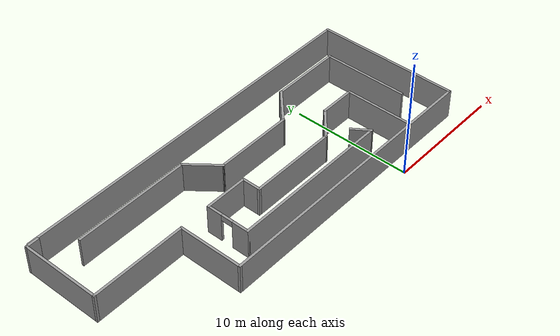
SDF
<?xml version='1.0'?>
<sdf version='1.4'>
  <model name='corridor_small'>
    <link name='Wall_10'>
      <collision name='Wall_10_Collision'>
        <geometry>
          <box>
            <size>1.12387 0.2 2.5</size>
          </box>
        </geometry>
        <pose>0 0 1.25 0 -0 0</pose>
      </collision>
      <visual name='Wall_10_Visual'>
        <pose>0 0 1.25 0 -0 0</pose>
        <geometry>
          <box>
            <size>1.12387 0.2 2.5</size>
          </box>
        </geometry>
        <material>
          <script>
            <uri>file://media/materials/scripts/gazebo.material</uri>
            <name>Gazebo/Grey</name>
          </script>
        </material>
      </visual>
      <velocity_decay>
        <linear>0</linear>
        <angular>0</angular>
      </velocity_decay>
      <pose>-23.7065 13.1084 0 0 -0 0</pose>
    </link>
    <link name='Wall_12'>
      <collision name='Wall_12_Collision'>
        <geometry>
          <box>
            <size>9.79835 0.2 2.5</size>
          </box>
        </geometry>
        <pose>0 0 1.25 0 -0 0</pose>
      </collision>
      <visual name='Wall_12_Visual'>
        <pose>0 0 1.25 0 -0 0</pose>
        <geometry>
          <box>
            <size>9.79835 0.2 2.5</size>
          </box>
        </geometry>
        <material>
          <script>
            <uri>file://media/materials/scripts/gazebo.material</uri>
            <name>Gazebo/Grey</name>
          </script>
        </material>
      </visual>
      <velocity_decay>
        <linear>0</linear>
        <angular>0</angular>
      </velocity_decay>
      <pose>-16.6254 10.9446 0 0 -0 0</pose>
    </link>
    <link name='Wall_13'>
      <collision name='Wall_13_Collision'>
        <geometry>
          <box>
            <size>3.13082 0.2 2.5</size>
          </box>
        </geometry>
        <pose>0 0 1.25 0 -0 0</pose>
      </collision>
      <visual name='Wall_13_Visual'>
        <pose>0 0 1.25 0 -0 0</pose>
        <geometry>
          <box>
            <size>3.13082 0.2 2.5</size>
          </box>
        </geometry>
        <material>
          <script>
            <uri>file://media/materials/scripts/gazebo.material</uri>
            <name>Gazebo/Grey</name>
          </script>
        </material>
      </visual>
      <velocity_decay>
        <linear>0</linear>
        <angular>0</angular>
      </velocity_decay>
      <pose>-10.9033 9.80634 0 0 0 -0.889498</pose>
    </link>
    <link name='Wall_14'>
      <collision name='Wall_14_Collision'>
        <geometry>
          <box>
            <size>6.66043 0.2 2.5</size>
          </box>
        </geometry>
        <pose>0 0 1.25 0 -0 0</pose>
      </collision>
      <visual name='Wall_14_Visual'>
        <pose>0 0 1.25 0 -0 0</pose>
        <geometry>
          <box>
            <size>6.66043 0.2 2.5</size>
          </box>
        </geometry>
        <material>
          <script>
            <uri>file://media/materials/scripts/gazebo.material</uri>
            <name>Gazebo/Grey</name>
          </script>
        </material>
      </visual>
      <velocity_decay>
        <linear>0</linear>
        <angular>0</angular>
      </velocity_decay>
      <pose>-6.75013 8.66808 0 0 -0 0</pose>
    </link>
    <link name='Wall_15'>
      <collision name='Wall_15_Collision'>
        <geometry>
          <box>
            <size>3.42068 0.2 2.5</size>
          </box>
        </geometry>
        <pose>0 0 1.25 0 -0 0</pose>
      </collision>
      <visual name='Wall_15_Visual'>
        <pose>0 0 1.25 0 -0 0</pose>
        <geometry>
          <box>
            <size>3.42068 0.2 2.5</size>
          </box>
        </geometry>
        <material>
          <script>
            <uri>file://media/materials/scripts/gazebo.material</uri>
            <name>Gazebo/Grey</name>
          </script>
        </material>
      </visual>
      <velocity_decay>
        <linear>0</linear>
        <angular>0</angular>
      </velocity_decay>
      <pose>-2.35089 9.77558 0 0 -0 0.758378</pose>
    </link>
    <link name='Wall_16'>
      <collision name='Wall_16_Collision'>
        <geometry>
          <box>
            <size>5.98362 0.2 2.5</size>
          </box>
        </geometry>
        <pose>0 0 1.25 0 -0 0</pose>
      </collision>
      <visual name='Wall_16_Visual'>
        <pose>0 0 1.25 0 -0 0</pose>
        <geometry>
          <box>
            <size>5.98362 0.2 2.5</size>
          </box>
        </geometry>
        <material>
          <script>
            <uri>file://media/materials/scripts/gazebo.material</uri>
            <name>Gazebo/Grey</name>
          </script>
        </material>
      </visual>
      <velocity_decay>
        <linear>0</linear>
        <angular>0</angular>
      </velocity_decay>
      <pose>1.70995 10.8831 0 0 -0 0</pose>
    </link>
    <link name='Wall_17'>
      <collision name='Wall_17_Collision'>
        <geometry>
          <box>
            <size>7.15265 0.2 2.5</size>
          </box>
        </geometry>
        <pose>0 0 1.25 0 -0 0</pose>
      </collision>
      <visual name='Wall_17_Visual'>
        <pose>0 0 1.25 0 -0 0</pose>
        <geometry>
          <box>
            <size>7.15265 0.2 2.5</size>
          </box>
        </geometry>
        <material>
          <script>
            <uri>file://media/materials/scripts/gazebo.material</uri>
            <name>Gazebo/Grey</name>
          </script>
        </material>
      </visual>
      <velocity_decay>
        <linear>0</linear>
        <angular>0</angular>
      </velocity_decay>
      <pose>4.60176 7.40675 0 0 0 -1.5708</pose>
    </link>
    <link name='Wall_19'>
      <collision name='Wall_19_Collision'>
        <geometry>
          <box>
            <size>5.79904 0.2 2.5</size>
          </box>
        </geometry>
        <pose>0 0 1.25 0 -0 0</pose>
      </collision>
      <visual name='Wall_19_Visual'>
        <pose>0 0 1.25 0 -0 0</pose>
        <geometry>
          <box>
            <size>5.79904 0.2 2.5</size>
          </box>
        </geometry>
        <material>
          <script>
            <uri>file://media/materials/scripts/gazebo.material</uri>
            <name>Gazebo/Grey</name>
          </script>
        </material>
      </visual>
      <velocity_decay>
        <linear>0</linear>
        <angular>0</angular>
      </velocity_decay>
      <pose>2.20217 4.2073 0 0 -0 1.5708</pose>
    </link>
    <link name='Wall_20'>
      <collision name='Wall_20_Collision'>
        <geometry>
          <box>
            <size>3.09181 0.2 2.5</size>
          </box>
        </geometry>
        <pose>0 0 1.25 0 -0 0</pose>
      </collision>
      <visual name='Wall_20_Visual'>
        <pose>0 0 1.25 0 -0 0</pose>
        <geometry>
          <box>
            <size>3.09181 0.2 2.5</size>
          </box>
        </geometry>
        <material>
          <script>
            <uri>file://media/materials/scripts/gazebo.material</uri>
            <name>Gazebo/Grey</name>
          </script>
        </material>
      </visual>
      <velocity_decay>
        <linear>0</linear>
        <angular>0</angular>
      </velocity_decay>
      <pose>0.756269 7.00682 0 0 -0 3.14159</pose>
    </link>
    <link name='Wall_21'>
      <collision name='Wall_21_Collision'>
        <geometry>
          <box>
            <size>3.03629 0.2 2.5</size>
          </box>
        </geometry>
        <pose>0 0 1.25 0 -0 0</pose>
      </collision>
      <visual name='Wall_21_Visual'>
        <pose>0 0 1.25 0 -0 0</pose>
        <geometry>
          <box>
            <size>3.03629 0.2 2.5</size>
          </box>
        </geometry>
        <material>
          <script>
            <uri>file://media/materials/scripts/gazebo.material</uri>
            <name>Gazebo/Grey</name>
          </script>
        </material>
      </visual>
      <velocity_decay>
        <linear>0</linear>
        <angular>0</angular>
      </velocity_decay>
      <pose>-1.76637 6.0839 0 0 0 -2.43297</pose>
    </link>
    <link name='Wall_22'>
      <collision name='Wall_22_Collision'>
        <geometry>
          <box>
            <size>7.46029 0.2 2.5</size>
          </box>
        </geometry>
        <pose>0 0 1.25 0 -0 0</pose>
      </collision>
      <visual name='Wall_22_Visual'>
        <pose>0 0 1.25 0 -0 0</pose>
        <geometry>
          <box>
            <size>7.46029 0.2 2.5</size>
          </box>
        </geometry>
        <material>
          <script>
            <uri>file://media/materials/scripts/gazebo.material</uri>
            <name>Gazebo/Grey</name>
          </script>
        </material>
      </visual>
      <velocity_decay>
        <linear>0</linear>
        <angular>0</angular>
      </velocity_decay>
      <pose>-6.47326 5.16099 0 0 -0 3.14159</pose>
    </link>
    <link name='Wall_23'>
      <collision name='Wall_23_Collision'>
        <geometry>
          <box>
            <size>1.67667 0.2 2.5</size>
          </box>
        </geometry>
        <pose>0 0 1.25 0 -0 0</pose>
      </collision>
      <visual name='Wall_23_Visual'>
        <pose>0 0 1.25 0 -0 0</pose>
        <geometry>
          <box>
            <size>1.67667 0.2 2.5</size>
          </box>
        </geometry>
        <material>
          <script>
            <uri>file://media/materials/scripts/gazebo.material</uri>
            <name>Gazebo/Grey</name>
          </script>
        </material>
      </visual>
      <velocity_decay>
        <linear>0</linear>
        <angular>0</angular>
      </velocity_decay>
      <pose>-10.1034 5.89932 0 0 -0 1.5708</pose>
    </link>
    <link name='Wall_24'>
      <collision name='Wall_24_Collision'>
        <geometry>
          <box>
            <size>3.70709 0.2 2.5</size>
          </box>
        </geometry>
        <pose>0 0 1.25 0 -0 0</pose>
      </collision>
      <visual name='Wall_24_Visual'>
        <pose>0 0 1.25 0 -0 0</pose>
        <geometry>
          <box>
            <size>3.70709 0.2 2.5</size>
          </box>
        </geometry>
        <material>
          <script>
            <uri>file://media/materials/scripts/gazebo.material</uri>
            <name>Gazebo/Grey</name>
          </script>
        </material>
      </visual>
      <velocity_decay>
        <linear>0</linear>
        <angular>0</angular>
      </velocity_decay>
      <pose>-11.8569 6.63766 0 0 -0 3.14159</pose>
    </link>
    <link name='Wall_25'>
      <pose>-13.6105 4.85335 0 0 0 -1.5708</pose>
      <visual name='Wall_25_Visual_0'>
        <pose>-1.22292 0 1.25 0 -0 0</pose>
        <geometry>
          <box>
            <size>1.32278 0.2 2.5</size>
          </box>
        </geometry>
        <material>
          <script>
            <uri>file://media/materials/scripts/gazebo.material</uri>
            <name>Gazebo/Grey</name>
          </script>
        </material>
      </visual>
      <collision name='Wall_25_Collision_0'>
        <geometry>
          <box>
            <size>1.32278 0.2 2.5</size>
          </box>
        </geometry>
        <pose>-1.22292 0 1.25 0 -0 0</pose>
      </collision>
      <visual name='Wall_25_Visual_1'>
        <pose>1.16139 0 1.25 0 -0 0</pose>
        <geometry>
          <box>
            <size>1.44584 0.2 2.5</size>
          </box>
        </geometry>
        <material>
          <script>
            <uri>file://media/materials/scripts/gazebo.material</uri>
            <name>Gazebo/Grey</name>
          </script>
        </material>
      </visual>
      <collision name='Wall_25_Collision_1'>
        <geometry>
          <box>
            <size>1.44584 0.2 2.5</size>
          </box>
        </geometry>
        <pose>1.16139 0 1.25 0 -0 0</pose>
      </collision>
      <visual name='Wall_25_Visual_2'>
        <pose>-0.061528 0 2.25 0 -0 0</pose>
        <geometry>
          <box>
            <size>1 0.2 0.5</size>
          </box>
        </geometry>
        <material>
          <script>
            <uri>file://media/materials/scripts/gazebo.material</uri>
            <name>Gazebo/Grey</name>
          </script>
        </material>
      </visual>
      <collision name='Wall_25_Collision_2'>
        <geometry>
          <box>
            <size>1 0.2 0.5</size>
          </box>
        </geometry>
        <pose>-0.061528 0 2.25 0 -0 0</pose>
      </collision>
    </link>
    <link name='Wall_26'>
      <collision name='Wall_26_Collision'>
        <geometry>
          <box>
            <size>13.6131 0.2 2.5</size>
          </box>
        </geometry>
        <pose>0 0 1.25 0 -0 0</pose>
      </collision>
      <visual name='Wall_26_Visual'>
        <pose>0 0 1.25 0 -0 0</pose>
        <geometry>
          <box>
            <size>13.6131 0.2 2.5</size>
          </box>
        </geometry>
        <material>
          <script>
            <uri>file://media/materials/scripts/gazebo.material</uri>
            <name>Gazebo/Grey</name>
          </script>
        </material>
      </visual>
      <velocity_decay>
        <linear>0</linear>
        <angular>0</angular>
      </velocity_decay>
      <pose>-6.90395 3.06904 0 0 -0 0</pose>
    </link>
    <link name='Wall_27'>
      <collision name='Wall_27_Collision'>
        <geometry>
          <box>
            <size>1.70209 0.2 2.5</size>
          </box>
        </geometry>
        <pose>0 0 1.25 0 -0 0</pose>
      </collision>
      <visual name='Wall_27_Visual'>
        <pose>0 0 1.25 0 -0 0</pose>
        <geometry>
          <box>
            <size>1.70209 0.2 2.5</size>
          </box>
        </geometry>
        <material>
          <script>
            <uri>file://media/materials/scripts/gazebo.material</uri>
            <name>Gazebo/Grey</name>
          </script>
        </material>
      </visual>
      <velocity_decay>
        <linear>0</linear>
        <angular>0</angular>
      </velocity_decay>
      <pose>-0.628108 3.68432 0 0 -0 2.18152</pose>
    </link>
    <link name='Wall_4'>
      <collision name='Wall_4_Collision'>
        <geometry>
          <box>
            <size>31.3001 0.2 2.5</size>
          </box>
        </geometry>
        <pose>0 0 1.25 0 -0 0</pose>
      </collision>
      <visual name='Wall_4_Visual'>
        <pose>0 0 1.25 0 -0 0</pose>
        <geometry>
          <box>
            <size>31.3001 0.2 2.5</size>
          </box>
        </geometry>
        <material>
          <script>
            <uri>file://media/materials/scripts/gazebo.material</uri>
            <name>Gazebo/Grey</name>
          </script>
        </material>
      </visual>
      <velocity_decay>
        <linear>0</linear>
        <angular>0</angular>
      </velocity_decay>
      <pose>-8.3686 13.1866 0 0 -0 0</pose>
    </link>
    <link name='Wall_5'>
      <collision name='Wall_5_Collision'>
        <geometry>
          <box>
            <size>12.0374 0.2 2.5</size>
          </box>
        </geometry>
        <pose>0 0 1.25 0 -0 0</pose>
      </collision>
      <visual name='Wall_5_Visual'>
        <pose>0 0 1.25 0 -0 0</pose>
        <geometry>
          <box>
            <size>12.0374 0.2 2.5</size>
          </box>
        </geometry>
        <material>
          <script>
            <uri>file://media/materials/scripts/gazebo.material</uri>
            <name>Gazebo/Grey</name>
          </script>
        </material>
      </visual>
      <velocity_decay>
        <linear>0</linear>
        <angular>0</angular>
      </velocity_decay>
      <pose>7.18143 7.2679 0 0 0 -1.5708</pose>
    </link>
    <link name='Wall_6'>
      <collision name='Wall_6_Collision'>
        <geometry>
          <box>
            <size>23.6596 0.2 2.5</size>
          </box>
        </geometry>
        <pose>0 0 1.25 0 -0 0</pose>
      </collision>
      <visual name='Wall_6_Visual'>
        <pose>0 0 1.25 0 -0 0</pose>
        <geometry>
          <box>
            <size>23.6596 0.2 2.5</size>
          </box>
        </geometry>
        <material>
          <script>
            <uri>file://media/materials/scripts/gazebo.material</uri>
            <name>Gazebo/Grey</name>
          </script>
        </material>
      </visual>
      <velocity_decay>
        <linear>0</linear>
        <angular>0</angular>
      </velocity_decay>
      <pose>-4.54835 1.3492 0 0 -0 3.14159</pose>
    </link>
    <link name='Wall_7'>
      <collision name='Wall_7_Collision'>
        <geometry>
          <box>
            <size>5.47302 0.2 2.5</size>
          </box>
        </geometry>
        <pose>0 0 1.25 0 -0 0</pose>
      </collision>
      <visual name='Wall_7_Visual'>
        <pose>0 0 1.25 0 -0 0</pose>
        <geometry>
          <box>
            <size>5.47302 0.2 2.5</size>
          </box>
        </geometry>
        <material>
          <script>
            <uri>file://media/materials/scripts/gazebo.material</uri>
            <name>Gazebo/Grey</name>
          </script>
        </material>
      </visual>
      <velocity_decay>
        <linear>0</linear>
        <angular>0</angular>
      </velocity_decay>
      <pose>-16.2781 3.98571 0 0 -0 1.5708</pose>
    </link>
    <link name='Wall_8'>
      <collision name='Wall_8_Collision'>
        <geometry>
          <box>
            <size>8.09029 0.2 2.5</size>
          </box>
        </geometry>
        <pose>0 0 1.25 0 -0 0</pose>
      </collision>
      <visual name='Wall_8_Visual'>
        <pose>0 0 1.25 0 -0 0</pose>
        <geometry>
          <box>
            <size>8.09029 0.2 2.5</size>
          </box>
        </geometry>
        <material>
          <script>
            <uri>file://media/materials/scripts/gazebo.material</uri>
            <name>Gazebo/Grey</name>
          </script>
        </material>
      </visual>
      <velocity_decay>
        <linear>0</linear>
        <angular>0</angular>
      </velocity_decay>
      <pose>-20.2233 6.62222 0 0 -0 3.14159</pose>
    </link>
    <link name='Wall_9'>
      <collision name='Wall_9_Collision'>
        <geometry>
          <box>
            <size>6.6862 0.2 2.5</size>
          </box>
        </geometry>
        <pose>0 0 1.25 0 -0 0</pose>
      </collision>
      <visual name='Wall_9_Visual'>
        <pose>0 0 1.25 0 -0 0</pose>
        <geometry>
          <box>
            <size>6.6862 0.2 2.5</size>
          </box>
        </geometry>
        <material>
          <script>
            <uri>file://media/materials/scripts/gazebo.material</uri>
            <name>Gazebo/Grey</name>
          </script>
        </material>
      </visual>
      <velocity_decay>
        <linear>0</linear>
        <angular>0</angular>
      </velocity_decay>
      <pose>-24.1684 9.86532 0 0 -0 1.5708</pose>
    </link>
    <static>1</static>
  </model>
</sdf>
